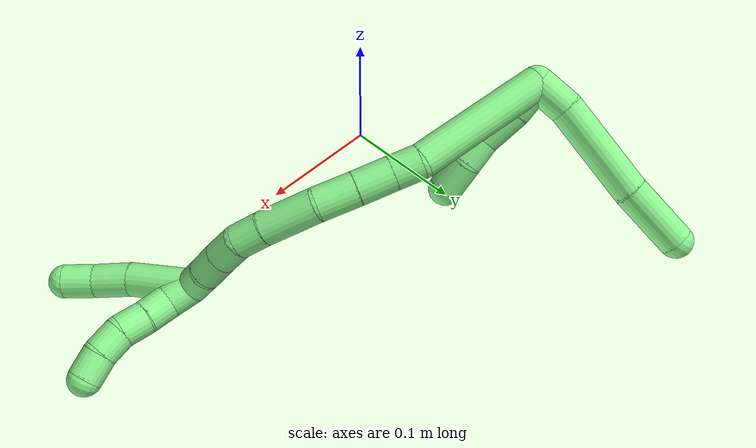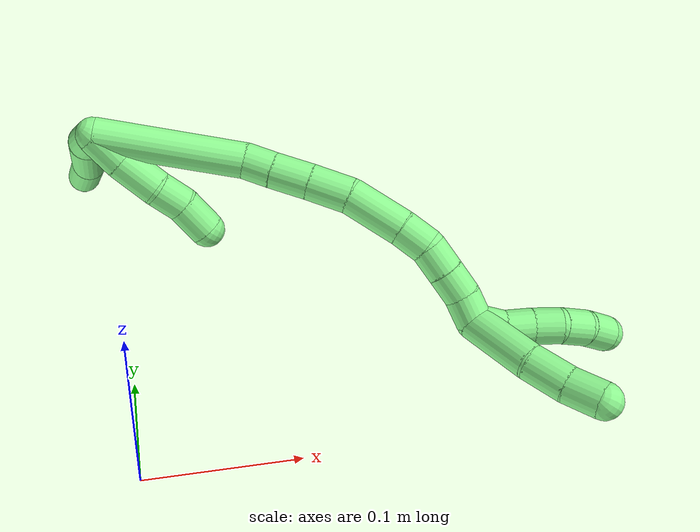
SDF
<sdf version="1.7">
 <world name="default">
  <model name="13">
   <static>0</static>
   <link name="13">
    <collision name="collision-cylinder-e_1_2_8">
     <pose>-0.010782 0.007575 0.002955 -1.19879 -0.924655 0.656368</pose>
     <geometry><cylinder><radius>0.0125</radius><length>0.027008</length></cylinder></geometry>
     <surface>
      <friction><ode><mu>1.16</mu><mu2>1.16</mu2><slip1>0</slip1><slip2>0</slip2></ode></friction>
      <contact><ode><kp>1e+06</kp><kd>1</kd><max_vel>0</max_vel><min_depth>0.001</min_depth></ode></contact>
     </surface>
    </collision>
    <visual name="visual-cylinder-e_1_2_8">
     <pose>-0.010782 0.007575 0.002955 -1.19879 -0.924655 0.656368</pose>
     <geometry><cylinder><radius>0.0125</radius><length>0.027008</length></cylinder></geometry>
     <material><ambient>0.564706 0.984314 0.572549 1</ambient></material>
    </visual>
    <collision name="collision-cylinder-e_2_8_9">
     <pose>-0.049878 0.03317 0.021325 -0.863191 -0.873612 0.423601</pose>
     <geometry><cylinder><radius>0.0125</radius><length>0.073866</length></cylinder></geometry>
     <surface>
      <friction><ode><mu>1.16</mu><mu2>1.16</mu2><slip1>0</slip1><slip2>0</slip2></ode></friction>
      <contact><ode><kp>1e+06</kp><kd>1</kd><max_vel>0</max_vel><min_depth>0.001</min_depth></ode></contact>
     </surface>
    </collision>
    <visual name="visual-cylinder-e_2_8_9">
     <pose>-0.049878 0.03317 0.021325 -0.863191 -0.873612 0.423601</pose>
     <geometry><cylinder><radius>0.0125</radius><length>0.073866</length></cylinder></geometry>
     <material><ambient>0.564706 0.984314 0.572549 1</ambient></material>
    </visual>
    <collision name="collision-cylinder-e_3_9_6">
     <pose>-0.096885 0.064766 0.045085 -1.0196 -0.864816 0.505071</pose>
     <geometry><cylinder><radius>0.0125</radius><length>0.049126</length></cylinder></geometry>
     <surface>
      <friction><ode><mu>1.16</mu><mu2>1.16</mu2><slip1>0</slip1><slip2>0</slip2></ode></friction>
      <contact><ode><kp>1e+06</kp><kd>1</kd><max_vel>0</max_vel><min_depth>0.001</min_depth></ode></contact>
     </surface>
    </collision>
    <visual name="visual-cylinder-e_3_9_6">
     <pose>-0.096885 0.064766 0.045085 -1.0196 -0.864816 0.505071</pose>
     <geometry><cylinder><radius>0.0125</radius><length>0.049126</length></cylinder></geometry>
     <material><ambient>0.564706 0.984314 0.572549 1</ambient></material>
    </visual>
    <collision name="collision-cylinder-e_1_2_10">
     <pose>0.003589 0.001729 0.011747 -0.146161 0.293557 -0.021646</pose>
     <geometry><cylinder><radius>0.0125</radius><length>0.024808</length></cylinder></geometry>
     <surface>
      <friction><ode><mu>1.16</mu><mu2>1.16</mu2><slip1>0</slip1><slip2>0</slip2></ode></friction>
      <contact><ode><kp>1e+06</kp><kd>1</kd><max_vel>0</max_vel><min_depth>0.001</min_depth></ode></contact>
     </surface>
    </collision>
    <visual name="visual-cylinder-e_1_2_10">
     <pose>0.003589 0.001729 0.011747 -0.146161 0.293557 -0.021646</pose>
     <geometry><cylinder><radius>0.0125</radius><length>0.024808</length></cylinder></geometry>
     <material><ambient>0.564706 0.984314 0.572549 1</ambient></material>
    </visual>
    <collision name="collision-cylinder-e_2_10_11">
     <pose>0.013079 0.003047 0.037152 0.030128 0.40762 0.006227</pose>
     <geometry><cylinder><radius>0.0125</radius><length>0.029769</length></cylinder></geometry>
     <surface>
      <friction><ode><mu>1.16</mu><mu2>1.16</mu2><slip1>0</slip1><slip2>0</slip2></ode></friction>
      <contact><ode><kp>1e+06</kp><kd>1</kd><max_vel>0</max_vel><min_depth>0.001</min_depth></ode></contact>
     </surface>
    </collision>
    <visual name="visual-cylinder-e_2_10_11">
     <pose>0.013079 0.003047 0.037152 0.030128 0.40762 0.006227</pose>
     <geometry><cylinder><radius>0.0125</radius><length>0.029769</length></cylinder></geometry>
     <material><ambient>0.564706 0.984314 0.572549 1</ambient></material>
    </visual>
    <collision name="collision-cylinder-e_3_11_12">
     <pose>0.020769 0.002352 0.061064 0.02763 0.1727 0.002392</pose>
     <geometry><cylinder><radius>0.0125</radius><length>0.020824</length></cylinder></geometry>
     <surface>
      <friction><ode><mu>1.16</mu><mu2>1.16</mu2><slip1>0</slip1><slip2>0</slip2></ode></friction>
      <contact><ode><kp>1e+06</kp><kd>1</kd><max_vel>0</max_vel><min_depth>0.001</min_depth></ode></contact>
     </surface>
    </collision>
    <visual name="visual-cylinder-e_3_11_12">
     <pose>0.020769 0.002352 0.061064 0.02763 0.1727 0.002392</pose>
     <geometry><cylinder><radius>0.0125</radius><length>0.020824</length></cylinder></geometry>
     <material><ambient>0.564706 0.984314 0.572549 1</ambient></material>
    </visual>
    <collision name="collision-cylinder-e_4_12_5">
     <pose>0.025849 0.004206 0.082974 -0.181317 0.270888 -0.024776</pose>
     <geometry><cylinder><radius>0.0125</radius><length>0.0246</length></cylinder></geometry>
     <surface>
      <friction><ode><mu>1.16</mu><mu2>1.16</mu2><slip1>0</slip1><slip2>0</slip2></ode></friction>
      <contact><ode><kp>1e+06</kp><kd>1</kd><max_vel>0</max_vel><min_depth>0.001</min_depth></ode></contact>
     </surface>
    </collision>
    <visual name="visual-cylinder-e_4_12_5">
     <pose>0.025849 0.004206 0.082974 -0.181317 0.270888 -0.024776</pose>
     <geometry><cylinder><radius>0.0125</radius><length>0.0246</length></cylinder></geometry>
     <material><ambient>0.564706 0.984314 0.572549 1</ambient></material>
    </visual>
    <collision name="collision-cylinder-e_1_2_13">
     <pose>0.012804 -0.024903 0.0425 0.530028 0.254302 0.069364</pose>
     <geometry><cylinder><radius>0.0125</radius><length>0.10179</length></cylinder></geometry>
     <surface>
      <friction><ode><mu>1.16</mu><mu2>1.16</mu2><slip1>0</slip1><slip2>0</slip2></ode></friction>
      <contact><ode><kp>1e+06</kp><kd>1</kd><max_vel>0</max_vel><min_depth>0.001</min_depth></ode></contact>
     </surface>
    </collision>
    <visual name="visual-cylinder-e_1_2_13">
     <pose>0.012804 -0.024903 0.0425 0.530028 0.254302 0.069364</pose>
     <geometry><cylinder><radius>0.0125</radius><length>0.10179</length></cylinder></geometry>
     <material><ambient>0.564706 0.984314 0.572549 1</ambient></material>
    </visual>
    <collision name="collision-cylinder-e_2_13_14">
     <pose>0.030908 -0.053865 0.092799 0.479887 0.542506 0.135872</pose>
     <geometry><cylinder><radius>0.0125</radius><length>0.020533</length></cylinder></geometry>
     <surface>
      <friction><ode><mu>1.16</mu><mu2>1.16</mu2><slip1>0</slip1><slip2>0</slip2></ode></friction>
      <contact><ode><kp>1e+06</kp><kd>1</kd><max_vel>0</max_vel><min_depth>0.001</min_depth></ode></contact>
     </surface>
    </collision>
    <visual name="visual-cylinder-e_2_13_14">
     <pose>0.030908 -0.053865 0.092799 0.479887 0.542506 0.135872</pose>
     <geometry><cylinder><radius>0.0125</radius><length>0.020533</length></cylinder></geometry>
     <material><ambient>0.564706 0.984314 0.572549 1</ambient></material>
    </visual>
    <collision name="collision-cylinder-e_3_14_15">
     <pose>0.042802 -0.063521 0.110743 0.504136 0.517416 0.136103</pose>
     <geometry><cylinder><radius>0.0125</radius><length>0.026663</length></cylinder></geometry>
     <surface>
      <friction><ode><mu>1.16</mu><mu2>1.16</mu2><slip1>0</slip1><slip2>0</slip2></ode></friction>
      <contact><ode><kp>1e+06</kp><kd>1</kd><max_vel>0</max_vel><min_depth>0.001</min_depth></ode></contact>
     </surface>
    </collision>
    <visual name="visual-cylinder-e_3_14_15">
     <pose>0.042802 -0.063521 0.110743 0.504136 0.517416 0.136103</pose>
     <geometry><cylinder><radius>0.0125</radius><length>0.026663</length></cylinder></geometry>
     <material><ambient>0.564706 0.984314 0.572549 1</ambient></material>
    </visual>
    <collision name="collision-cylinder-e_4_15_16">
     <pose>0.057013 -0.074901 0.131835 0.48596 0.551484 0.140044</pose>
     <geometry><cylinder><radius>0.0125</radius><length>0.029072</length></cylinder></geometry>
     <surface>
      <friction><ode><mu>1.16</mu><mu2>1.16</mu2><slip1>0</slip1><slip2>0</slip2></ode></friction>
      <contact><ode><kp>1e+06</kp><kd>1</kd><max_vel>0</max_vel><min_depth>0.001</min_depth></ode></contact>
     </surface>
    </collision>
    <visual name="visual-cylinder-e_4_15_16">
     <pose>0.057013 -0.074901 0.131835 0.48596 0.551484 0.140044</pose>
     <geometry><cylinder><radius>0.0125</radius><length>0.029072</length></cylinder></geometry>
     <material><ambient>0.564706 0.984314 0.572549 1</ambient></material>
    </visual>
    <collision name="collision-cylinder-e_5_16_17">
     <pose>0.076941 -0.084595 0.158544 0.243303 0.648713 0.082166</pose>
     <geometry><cylinder><radius>0.0125</radius><length>0.040758</length></cylinder></geometry>
     <surface>
      <friction><ode><mu>1.16</mu><mu2>1.16</mu2><slip1>0</slip1><slip2>0</slip2></ode></friction>
      <contact><ode><kp>1e+06</kp><kd>1</kd><max_vel>0</max_vel><min_depth>0.001</min_depth></ode></contact>
     </surface>
    </collision>
    <visual name="visual-cylinder-e_5_16_17">
     <pose>0.076941 -0.084595 0.158544 0.243303 0.648713 0.082166</pose>
     <geometry><cylinder><radius>0.0125</radius><length>0.040758</length></cylinder></geometry>
     <material><ambient>0.564706 0.984314 0.572549 1</ambient></material>
    </visual>
    <collision name="collision-cylinder-e_6_17_18">
     <pose>0.095493 -0.089634 0.182607 0.134867 0.640099 0.044761</pose>
     <geometry><cylinder><radius>0.0125</radius><length>0.020894</length></cylinder></geometry>
     <surface>
      <friction><ode><mu>1.16</mu><mu2>1.16</mu2><slip1>0</slip1><slip2>0</slip2></ode></friction>
      <contact><ode><kp>1e+06</kp><kd>1</kd><max_vel>0</max_vel><min_depth>0.001</min_depth></ode></contact>
     </surface>
    </collision>
    <visual name="visual-cylinder-e_6_17_18">
     <pose>0.095493 -0.089634 0.182607 0.134867 0.640099 0.044761</pose>
     <geometry><cylinder><radius>0.0125</radius><length>0.020894</length></cylinder></geometry>
     <material><ambient>0.564706 0.984314 0.572549 1</ambient></material>
    </visual>
    <collision name="collision-cylinder-e_7_18_19">
     <pose>0.106922 -0.088508 0.199242 -0.264042 0.541338 -0.073661</pose>
     <geometry><cylinder><radius>0.0125</radius><length>0.020143</length></cylinder></geometry>
     <surface>
      <friction><ode><mu>1.16</mu><mu2>1.16</mu2><slip1>0</slip1><slip2>0</slip2></ode></friction>
      <contact><ode><kp>1e+06</kp><kd>1</kd><max_vel>0</max_vel><min_depth>0.001</min_depth></ode></contact>
     </surface>
    </collision>
    <visual name="visual-cylinder-e_7_18_19">
     <pose>0.106922 -0.088508 0.199242 -0.264042 0.541338 -0.073661</pose>
     <geometry><cylinder><radius>0.0125</radius><length>0.020143</length></cylinder></geometry>
     <material><ambient>0.564706 0.984314 0.572549 1</ambient></material>
    </visual>
    <collision name="collision-cylinder-e_8_19_20">
     <pose>0.11693 -0.083889 0.216045 -0.272447 0.501172 -0.070143</pose>
     <geometry><cylinder><radius>0.0125</radius><length>0.020056</length></cylinder></geometry>
     <surface>
      <friction><ode><mu>1.16</mu><mu2>1.16</mu2><slip1>0</slip1><slip2>0</slip2></ode></friction>
      <contact><ode><kp>1e+06</kp><kd>1</kd><max_vel>0</max_vel><min_depth>0.001</min_depth></ode></contact>
     </surface>
    </collision>
    <visual name="visual-cylinder-e_8_19_20">
     <pose>0.11693 -0.083889 0.216045 -0.272447 0.501172 -0.070143</pose>
     <geometry><cylinder><radius>0.0125</radius><length>0.020056</length></cylinder></geometry>
     <material><ambient>0.564706 0.984314 0.572549 1</ambient></material>
    </visual>
    <collision name="collision-cylinder-e_9_20_1">
     <pose>0.127353 -0.077665 0.231906 -0.481059 0.591892 -0.149293</pose>
     <geometry><cylinder><radius>0.0125</radius><length>0.020091</length></cylinder></geometry>
     <surface>
      <friction><ode><mu>1.16</mu><mu2>1.16</mu2><slip1>0</slip1><slip2>0</slip2></ode></friction>
      <contact><ode><kp>1e+06</kp><kd>1</kd><max_vel>0</max_vel><min_depth>0.001</min_depth></ode></contact>
     </surface>
    </collision>
    <visual name="visual-cylinder-e_9_20_1">
     <pose>0.127353 -0.077665 0.231906 -0.481059 0.591892 -0.149293</pose>
     <geometry><cylinder><radius>0.0125</radius><length>0.020091</length></cylinder></geometry>
     <material><ambient>0.564706 0.984314 0.572549 1</ambient></material>
    </visual>
    <collision name="collision-cylinder-e_1_1_21">
     <pose>0.154506 -0.079282 0.248479 0.537699 1.11026 0.338477</pose>
     <geometry><cylinder><radius>0.0125</radius><length>0.048111</length></cylinder></geometry>
     <surface>
      <friction><ode><mu>1.16</mu><mu2>1.16</mu2><slip1>0</slip1><slip2>0</slip2></ode></friction>
      <contact><ode><kp>1e+06</kp><kd>1</kd><max_vel>0</max_vel><min_depth>0.001</min_depth></ode></contact>
     </surface>
    </collision>
    <visual name="visual-cylinder-e_1_1_21">
     <pose>0.154506 -0.079282 0.248479 0.537699 1.11026 0.338477</pose>
     <geometry><cylinder><radius>0.0125</radius><length>0.048111</length></cylinder></geometry>
     <material><ambient>0.564706 0.984314 0.572549 1</ambient></material>
    </visual>
    <collision name="collision-cylinder-e_2_21_22">
     <pose>0.187519 -0.088765 0.2648 0.511479 0.950665 0.267541</pose>
     <geometry><cylinder><radius>0.0125</radius><length>0.028172</length></cylinder></geometry>
     <surface>
      <friction><ode><mu>1.16</mu><mu2>1.16</mu2><slip1>0</slip1><slip2>0</slip2></ode></friction>
      <contact><ode><kp>1e+06</kp><kd>1</kd><max_vel>0</max_vel><min_depth>0.001</min_depth></ode></contact>
     </surface>
    </collision>
    <visual name="visual-cylinder-e_2_21_22">
     <pose>0.187519 -0.088765 0.2648 0.511479 0.950665 0.267541</pose>
     <geometry><cylinder><radius>0.0125</radius><length>0.028172</length></cylinder></geometry>
     <material><ambient>0.564706 0.984314 0.572549 1</ambient></material>
    </visual>
    <collision name="collision-cylinder-e_3_22_4">
     <pose>0.208235 -0.097597 0.27757 0.708419 0.895093 0.351377</pose>
     <geometry><cylinder><radius>0.0125</radius><length>0.023718</length></cylinder></geometry>
     <surface>
      <friction><ode><mu>1.16</mu><mu2>1.16</mu2><slip1>0</slip1><slip2>0</slip2></ode></friction>
      <contact><ode><kp>1e+06</kp><kd>1</kd><max_vel>0</max_vel><min_depth>0.001</min_depth></ode></contact>
     </surface>
    </collision>
    <visual name="visual-cylinder-e_3_22_4">
     <pose>0.208235 -0.097597 0.27757 0.708419 0.895093 0.351377</pose>
     <geometry><cylinder><radius>0.0125</radius><length>0.023718</length></cylinder></geometry>
     <material><ambient>0.564706 0.984314 0.572549 1</ambient></material>
    </visual>
    <collision name="collision-cylinder-e_1_1_23">
     <pose>0.136006 -0.078143 0.247777 0.472619 0.309774 0.075163</pose>
     <geometry><cylinder><radius>0.0125</radius><length>0.02</length></cylinder></geometry>
     <surface>
      <friction><ode><mu>1.16</mu><mu2>1.16</mu2><slip1>0</slip1><slip2>0</slip2></ode></friction>
      <contact><ode><kp>1e+06</kp><kd>1</kd><max_vel>0</max_vel><min_depth>0.001</min_depth></ode></contact>
     </surface>
    </collision>
    <visual name="visual-cylinder-e_1_1_23">
     <pose>0.136006 -0.078143 0.247777 0.472619 0.309774 0.075163</pose>
     <geometry><cylinder><radius>0.0125</radius><length>0.02</length></cylinder></geometry>
     <material><ambient>0.564706 0.984314 0.572549 1</ambient></material>
    </visual>
    <collision name="collision-cylinder-e_2_23_24">
     <pose>0.140034 -0.088883 0.263873 0.699236 0.098099 0.035791</pose>
     <geometry><cylinder><radius>0.0125</radius><length>0.02</length></cylinder></geometry>
     <surface>
      <friction><ode><mu>1.16</mu><mu2>1.16</mu2><slip1>0</slip1><slip2>0</slip2></ode></friction>
      <contact><ode><kp>1e+06</kp><kd>1</kd><max_vel>0</max_vel><min_depth>0.001</min_depth></ode></contact>
     </surface>
    </collision>
    <visual name="visual-cylinder-e_2_23_24">
     <pose>0.140034 -0.088883 0.263873 0.699236 0.098099 0.035791</pose>
     <geometry><cylinder><radius>0.0125</radius><length>0.02</length></cylinder></geometry>
     <material><ambient>0.564706 0.984314 0.572549 1</ambient></material>
    </visual>
    <collision name="collision-cylinder-e_3_24_25">
     <pose>0.143041 -0.101577 0.278996 0.697326 0.204202 0.074455</pose>
     <geometry><cylinder><radius>0.0125</radius><length>0.02</length></cylinder></geometry>
     <surface>
      <friction><ode><mu>1.16</mu><mu2>1.16</mu2><slip1>0</slip1><slip2>0</slip2></ode></friction>
      <contact><ode><kp>1e+06</kp><kd>1</kd><max_vel>0</max_vel><min_depth>0.001</min_depth></ode></contact>
     </surface>
    </collision>
    <visual name="visual-cylinder-e_3_24_25">
     <pose>0.143041 -0.101577 0.278996 0.697326 0.204202 0.074455</pose>
     <geometry><cylinder><radius>0.0125</radius><length>0.02</length></cylinder></geometry>
     <material><ambient>0.564706 0.984314 0.572549 1</ambient></material>
    </visual>
    <collision name="collision-cylinder-e_4_25_26">
     <pose>0.145282 -0.112157 0.295532 0.443637 0.021284 0.0048</pose>
     <geometry><cylinder><radius>0.0125</radius><length>0.02</length></cylinder></geometry>
     <surface>
      <friction><ode><mu>1.16</mu><mu2>1.16</mu2><slip1>0</slip1><slip2>0</slip2></ode></friction>
      <contact><ode><kp>1e+06</kp><kd>1</kd><max_vel>0</max_vel><min_depth>0.001</min_depth></ode></contact>
     </surface>
    </collision>
    <visual name="visual-cylinder-e_4_25_26">
     <pose>0.145282 -0.112157 0.295532 0.443637 0.021284 0.0048</pose>
     <geometry><cylinder><radius>0.0125</radius><length>0.02</length></cylinder></geometry>
     <material><ambient>0.564706 0.984314 0.572549 1</ambient></material>
    </visual>
    <collision name="collision-cylinder-e_5_26_3">
     <pose>0.144719 -0.11866 0.314284 0.223718 -0.077582 -0.008719</pose>
     <geometry><cylinder><radius>0.0125</radius><length>0.02</length></cylinder></geometry>
     <surface>
      <friction><ode><mu>1.16</mu><mu2>1.16</mu2><slip1>0</slip1><slip2>0</slip2></ode></friction>
      <contact><ode><kp>1e+06</kp><kd>1</kd><max_vel>0</max_vel><min_depth>0.001</min_depth></ode></contact>
     </surface>
    </collision>
    <visual name="visual-cylinder-e_5_26_3">
     <pose>0.144719 -0.11866 0.314284 0.223718 -0.077582 -0.008719</pose>
     <geometry><cylinder><radius>0.0125</radius><length>0.02</length></cylinder></geometry>
     <material><ambient>0.564706 0.984314 0.572549 1</ambient></material>
    </visual>
    <collision name="collision-sphere-3">
     <pose>0.143944 -0.120872 0.324005 0 -0 0</pose>
     <geometry><sphere><radius>0.0125</radius></sphere></geometry>
     <surface>
      <friction><ode><mu>1.16</mu><mu2>1.16</mu2><slip1>0</slip1><slip2>0</slip2></ode></friction>
      <contact><ode><kp>1e+06</kp><kd>1</kd><max_vel>0</max_vel><min_depth>0.001</min_depth></ode></contact>
     </surface>
    </collision>
    <visual name="visual-sphere-3">
     <pose>0.143944 -0.120872 0.324005 0 -0 0</pose>
     <geometry><sphere><radius>0.0125</radius></sphere></geometry>
     <material><ambient>0.564706 0.984314 0.572549 1</ambient></material>
    </visual>
    <collision name="collision-sphere-26">
     <pose>0.145494 -0.116448 0.304562 0 -0 0</pose>
     <geometry><sphere><radius>0.0125</radius></sphere></geometry>
     <surface>
      <friction><ode><mu>1.16</mu><mu2>1.16</mu2><slip1>0</slip1><slip2>0</slip2></ode></friction>
      <contact><ode><kp>1e+06</kp><kd>1</kd><max_vel>0</max_vel><min_depth>0.001</min_depth></ode></contact>
     </surface>
    </collision>
    <visual name="visual-sphere-26">
     <pose>0.145494 -0.116448 0.304562 0 -0 0</pose>
     <geometry><sphere><radius>0.0125</radius></sphere></geometry>
     <material><ambient>0.564706 0.984314 0.572549 1</ambient></material>
    </visual>
    <collision name="collision-sphere-25">
     <pose>0.145069 -0.107865 0.286503 0 -0 0</pose>
     <geometry><sphere><radius>0.0125</radius></sphere></geometry>
     <surface>
      <friction><ode><mu>1.16</mu><mu2>1.16</mu2><slip1>0</slip1><slip2>0</slip2></ode></friction>
      <contact><ode><kp>1e+06</kp><kd>1</kd><max_vel>0</max_vel><min_depth>0.001</min_depth></ode></contact>
     </surface>
    </collision>
    <visual name="visual-sphere-25">
     <pose>0.145069 -0.107865 0.286503 0 -0 0</pose>
     <geometry><sphere><radius>0.0125</radius></sphere></geometry>
     <material><ambient>0.564706 0.984314 0.572549 1</ambient></material>
    </visual>
    <collision name="collision-sphere-24">
     <pose>0.141013 -0.095289 0.27149 0 -0 0</pose>
     <geometry><sphere><radius>0.0125</radius></sphere></geometry>
     <surface>
      <friction><ode><mu>1.16</mu><mu2>1.16</mu2><slip1>0</slip1><slip2>0</slip2></ode></friction>
      <contact><ode><kp>1e+06</kp><kd>1</kd><max_vel>0</max_vel><min_depth>0.001</min_depth></ode></contact>
     </surface>
    </collision>
    <visual name="visual-sphere-24">
     <pose>0.141013 -0.095289 0.27149 0 -0 0</pose>
     <geometry><sphere><radius>0.0125</radius></sphere></geometry>
     <material><ambient>0.564706 0.984314 0.572549 1</ambient></material>
    </visual>
    <collision name="collision-sphere-23">
     <pose>0.139054 -0.082478 0.256257 0 -0 0</pose>
     <geometry><sphere><radius>0.0125</radius></sphere></geometry>
     <surface>
      <friction><ode><mu>1.16</mu><mu2>1.16</mu2><slip1>0</slip1><slip2>0</slip2></ode></friction>
      <contact><ode><kp>1e+06</kp><kd>1</kd><max_vel>0</max_vel><min_depth>0.001</min_depth></ode></contact>
     </surface>
    </collision>
    <visual name="visual-sphere-23">
     <pose>0.139054 -0.082478 0.256257 0 -0 0</pose>
     <geometry><sphere><radius>0.0125</radius></sphere></geometry>
     <material><ambient>0.564706 0.984314 0.572549 1</ambient></material>
    </visual>
    <collision name="collision-sphere-4">
     <pose>0.217488 -0.102423 0.283203 0 -0 0</pose>
     <geometry><sphere><radius>0.0125</radius></sphere></geometry>
     <surface>
      <friction><ode><mu>1.16</mu><mu2>1.16</mu2><slip1>0</slip1><slip2>0</slip2></ode></friction>
      <contact><ode><kp>1e+06</kp><kd>1</kd><max_vel>0</max_vel><min_depth>0.001</min_depth></ode></contact>
     </surface>
    </collision>
    <visual name="visual-sphere-4">
     <pose>0.217488 -0.102423 0.283203 0 -0 0</pose>
     <geometry><sphere><radius>0.0125</radius></sphere></geometry>
     <material><ambient>0.564706 0.984314 0.572549 1</ambient></material>
    </visual>
    <collision name="collision-sphere-22">
     <pose>0.198982 -0.092771 0.271938 0 -0 0</pose>
     <geometry><sphere><radius>0.0125</radius></sphere></geometry>
     <surface>
      <friction><ode><mu>1.16</mu><mu2>1.16</mu2><slip1>0</slip1><slip2>0</slip2></ode></friction>
      <contact><ode><kp>1e+06</kp><kd>1</kd><max_vel>0</max_vel><min_depth>0.001</min_depth></ode></contact>
     </surface>
    </collision>
    <visual name="visual-sphere-22">
     <pose>0.198982 -0.092771 0.271938 0 -0 0</pose>
     <geometry><sphere><radius>0.0125</radius></sphere></geometry>
     <material><ambient>0.564706 0.984314 0.572549 1</ambient></material>
    </visual>
    <collision name="collision-sphere-21">
     <pose>0.176056 -0.084758 0.257661 0 -0 0</pose>
     <geometry><sphere><radius>0.0125</radius></sphere></geometry>
     <surface>
      <friction><ode><mu>1.16</mu><mu2>1.16</mu2><slip1>0</slip1><slip2>0</slip2></ode></friction>
      <contact><ode><kp>1e+06</kp><kd>1</kd><max_vel>0</max_vel><min_depth>0.001</min_depth></ode></contact>
     </surface>
    </collision>
    <visual name="visual-sphere-21">
     <pose>0.176056 -0.084758 0.257661 0 -0 0</pose>
     <geometry><sphere><radius>0.0125</radius></sphere></geometry>
     <material><ambient>0.564706 0.984314 0.572549 1</ambient></material>
    </visual>
    <collision name="collision-sphere-1">
     <pose>0.132957 -0.073807 0.239297 0 -0 0</pose>
     <geometry><sphere><radius>0.0125</radius></sphere></geometry>
     <surface>
      <friction><ode><mu>1.16</mu><mu2>1.16</mu2><slip1>0</slip1><slip2>0</slip2></ode></friction>
      <contact><ode><kp>1e+06</kp><kd>1</kd><max_vel>0</max_vel><min_depth>0.001</min_depth></ode></contact>
     </surface>
    </collision>
    <visual name="visual-sphere-1">
     <pose>0.132957 -0.073807 0.239297 0 -0 0</pose>
     <geometry><sphere><radius>0.0125</radius></sphere></geometry>
     <material><ambient>0.564706 0.984314 0.572549 1</ambient></material>
    </visual>
    <collision name="collision-sphere-11">
     <pose>0.018979 0.002635 0.050811 0 -0 0</pose>
     <geometry><sphere><radius>0.0125</radius></sphere></geometry>
     <surface>
      <friction><ode><mu>1.16</mu><mu2>1.16</mu2><slip1>0</slip1><slip2>0</slip2></ode></friction>
      <contact><ode><kp>1e+06</kp><kd>1</kd><max_vel>0</max_vel><min_depth>0.001</min_depth></ode></contact>
     </surface>
    </collision>
    <visual name="visual-sphere-11">
     <pose>0.018979 0.002635 0.050811 0 -0 0</pose>
     <geometry><sphere><radius>0.0125</radius></sphere></geometry>
     <material><ambient>0.564706 0.984314 0.572549 1</ambient></material>
    </visual>
    <collision name="collision-sphere-10">
     <pose>0.007178 0.003458 0.023493 0 -0 0</pose>
     <geometry><sphere><radius>0.0125</radius></sphere></geometry>
     <surface>
      <friction><ode><mu>1.16</mu><mu2>1.16</mu2><slip1>0</slip1><slip2>0</slip2></ode></friction>
      <contact><ode><kp>1e+06</kp><kd>1</kd><max_vel>0</max_vel><min_depth>0.001</min_depth></ode></contact>
     </surface>
    </collision>
    <visual name="visual-sphere-10">
     <pose>0.007178 0.003458 0.023493 0 -0 0</pose>
     <geometry><sphere><radius>0.0125</radius></sphere></geometry>
     <material><ambient>0.564706 0.984314 0.572549 1</ambient></material>
    </visual>
    <collision name="collision-sphere-6">
     <pose>-0.115577 0.078342 0.05343 0 -0 0</pose>
     <geometry><sphere><radius>0.0125</radius></sphere></geometry>
     <surface>
      <friction><ode><mu>1.16</mu><mu2>1.16</mu2><slip1>0</slip1><slip2>0</slip2></ode></friction>
      <contact><ode><kp>1e+06</kp><kd>1</kd><max_vel>0</max_vel><min_depth>0.001</min_depth></ode></contact>
     </surface>
    </collision>
    <visual name="visual-sphere-6">
     <pose>-0.115577 0.078342 0.05343 0 -0 0</pose>
     <geometry><sphere><radius>0.0125</radius></sphere></geometry>
     <material><ambient>0.564706 0.984314 0.572549 1</ambient></material>
    </visual>
    <collision name="collision-sphere-9">
     <pose>-0.078193 0.05119 0.036739 0 -0 0</pose>
     <geometry><sphere><radius>0.0125</radius></sphere></geometry>
     <surface>
      <friction><ode><mu>1.16</mu><mu2>1.16</mu2><slip1>0</slip1><slip2>0</slip2></ode></friction>
      <contact><ode><kp>1e+06</kp><kd>1</kd><max_vel>0</max_vel><min_depth>0.001</min_depth></ode></contact>
     </surface>
    </collision>
    <visual name="visual-sphere-9">
     <pose>-0.078193 0.05119 0.036739 0 -0 0</pose>
     <geometry><sphere><radius>0.0125</radius></sphere></geometry>
     <material><ambient>0.564706 0.984314 0.572549 1</ambient></material>
    </visual>
    <collision name="collision-sphere-2">
     <geometry><sphere><radius>0.0125</radius></sphere></geometry>
     <surface>
      <friction><ode><mu>1.16</mu><mu2>1.16</mu2><slip1>0</slip1><slip2>0</slip2></ode></friction>
      <contact><ode><kp>1e+06</kp><kd>1</kd><max_vel>0</max_vel><min_depth>0.001</min_depth></ode></contact>
     </surface>
    </collision>
    <visual name="visual-sphere-2">
     <geometry><sphere><radius>0.0125</radius></sphere></geometry>
     <material><ambient>0.564706 0.984314 0.572549 1</ambient></material>
    </visual>
    <collision name="collision-sphere-19">
     <pose>0.112112 -0.086255 0.207575 0 -0 0</pose>
     <geometry><sphere><radius>0.0125</radius></sphere></geometry>
     <surface>
      <friction><ode><mu>1.16</mu><mu2>1.16</mu2><slip1>0</slip1><slip2>0</slip2></ode></friction>
      <contact><ode><kp>1e+06</kp><kd>1</kd><max_vel>0</max_vel><min_depth>0.001</min_depth></ode></contact>
     </surface>
    </collision>
    <visual name="visual-sphere-19">
     <pose>0.112112 -0.086255 0.207575 0 -0 0</pose>
     <geometry><sphere><radius>0.0125</radius></sphere></geometry>
     <material><ambient>0.564706 0.984314 0.572549 1</ambient></material>
    </visual>
    <collision name="collision-sphere-8">
     <pose>-0.021563 0.015149 0.005911 0 -0 0</pose>
     <geometry><sphere><radius>0.0125</radius></sphere></geometry>
     <surface>
      <friction><ode><mu>1.16</mu><mu2>1.16</mu2><slip1>0</slip1><slip2>0</slip2></ode></friction>
      <contact><ode><kp>1e+06</kp><kd>1</kd><max_vel>0</max_vel><min_depth>0.001</min_depth></ode></contact>
     </surface>
    </collision>
    <visual name="visual-sphere-8">
     <pose>-0.021563 0.015149 0.005911 0 -0 0</pose>
     <geometry><sphere><radius>0.0125</radius></sphere></geometry>
     <material><ambient>0.564706 0.984314 0.572549 1</ambient></material>
    </visual>
    <collision name="collision-sphere-12">
     <pose>0.022558 0.002068 0.071317 0 -0 0</pose>
     <geometry><sphere><radius>0.0125</radius></sphere></geometry>
     <surface>
      <friction><ode><mu>1.16</mu><mu2>1.16</mu2><slip1>0</slip1><slip2>0</slip2></ode></friction>
      <contact><ode><kp>1e+06</kp><kd>1</kd><max_vel>0</max_vel><min_depth>0.001</min_depth></ode></contact>
     </surface>
    </collision>
    <visual name="visual-sphere-12">
     <pose>0.022558 0.002068 0.071317 0 -0 0</pose>
     <geometry><sphere><radius>0.0125</radius></sphere></geometry>
     <material><ambient>0.564706 0.984314 0.572549 1</ambient></material>
    </visual>
    <collision name="collision-sphere-5">
     <pose>0.02914 0.006343 0.094631 0 -0 0</pose>
     <geometry><sphere><radius>0.0125</radius></sphere></geometry>
     <surface>
      <friction><ode><mu>1.16</mu><mu2>1.16</mu2><slip1>0</slip1><slip2>0</slip2></ode></friction>
      <contact><ode><kp>1e+06</kp><kd>1</kd><max_vel>0</max_vel><min_depth>0.001</min_depth></ode></contact>
     </surface>
    </collision>
    <visual name="visual-sphere-5">
     <pose>0.02914 0.006343 0.094631 0 -0 0</pose>
     <geometry><sphere><radius>0.0125</radius></sphere></geometry>
     <material><ambient>0.564706 0.984314 0.572549 1</ambient></material>
    </visual>
    <collision name="collision-sphere-13">
     <pose>0.025607 -0.049806 0.085 0 -0 0</pose>
     <geometry><sphere><radius>0.0125</radius></sphere></geometry>
     <surface>
      <friction><ode><mu>1.16</mu><mu2>1.16</mu2><slip1>0</slip1><slip2>0</slip2></ode></friction>
      <contact><ode><kp>1e+06</kp><kd>1</kd><max_vel>0</max_vel><min_depth>0.001</min_depth></ode></contact>
     </surface>
    </collision>
    <visual name="visual-sphere-13">
     <pose>0.025607 -0.049806 0.085 0 -0 0</pose>
     <geometry><sphere><radius>0.0125</radius></sphere></geometry>
     <material><ambient>0.564706 0.984314 0.572549 1</ambient></material>
    </visual>
    <collision name="collision-sphere-14">
     <pose>0.036208 -0.057924 0.100598 0 -0 0</pose>
     <geometry><sphere><radius>0.0125</radius></sphere></geometry>
     <surface>
      <friction><ode><mu>1.16</mu><mu2>1.16</mu2><slip1>0</slip1><slip2>0</slip2></ode></friction>
      <contact><ode><kp>1e+06</kp><kd>1</kd><max_vel>0</max_vel><min_depth>0.001</min_depth></ode></contact>
     </surface>
    </collision>
    <visual name="visual-sphere-14">
     <pose>0.036208 -0.057924 0.100598 0 -0 0</pose>
     <geometry><sphere><radius>0.0125</radius></sphere></geometry>
     <material><ambient>0.564706 0.984314 0.572549 1</ambient></material>
    </visual>
    <collision name="collision-sphere-15">
     <pose>0.049396 -0.069118 0.120888 0 -0 0</pose>
     <geometry><sphere><radius>0.0125</radius></sphere></geometry>
     <surface>
      <friction><ode><mu>1.16</mu><mu2>1.16</mu2><slip1>0</slip1><slip2>0</slip2></ode></friction>
      <contact><ode><kp>1e+06</kp><kd>1</kd><max_vel>0</max_vel><min_depth>0.001</min_depth></ode></contact>
     </surface>
    </collision>
    <visual name="visual-sphere-15">
     <pose>0.049396 -0.069118 0.120888 0 -0 0</pose>
     <geometry><sphere><radius>0.0125</radius></sphere></geometry>
     <material><ambient>0.564706 0.984314 0.572549 1</ambient></material>
    </visual>
    <collision name="collision-sphere-16">
     <pose>0.064629 -0.080683 0.142783 0 -0 0</pose>
     <geometry><sphere><radius>0.0125</radius></sphere></geometry>
     <surface>
      <friction><ode><mu>1.16</mu><mu2>1.16</mu2><slip1>0</slip1><slip2>0</slip2></ode></friction>
      <contact><ode><kp>1e+06</kp><kd>1</kd><max_vel>0</max_vel><min_depth>0.001</min_depth></ode></contact>
     </surface>
    </collision>
    <visual name="visual-sphere-16">
     <pose>0.064629 -0.080683 0.142783 0 -0 0</pose>
     <geometry><sphere><radius>0.0125</radius></sphere></geometry>
     <material><ambient>0.564706 0.984314 0.572549 1</ambient></material>
    </visual>
    <collision name="collision-sphere-17">
     <pose>0.089253 -0.088508 0.174305 0 -0 0</pose>
     <geometry><sphere><radius>0.0125</radius></sphere></geometry>
     <surface>
      <friction><ode><mu>1.16</mu><mu2>1.16</mu2><slip1>0</slip1><slip2>0</slip2></ode></friction>
      <contact><ode><kp>1e+06</kp><kd>1</kd><max_vel>0</max_vel><min_depth>0.001</min_depth></ode></contact>
     </surface>
    </collision>
    <visual name="visual-sphere-17">
     <pose>0.089253 -0.088508 0.174305 0 -0 0</pose>
     <geometry><sphere><radius>0.0125</radius></sphere></geometry>
     <material><ambient>0.564706 0.984314 0.572549 1</ambient></material>
    </visual>
    <collision name="collision-sphere-18">
     <pose>0.101732 -0.090761 0.19091 0 -0 0</pose>
     <geometry><sphere><radius>0.0125</radius></sphere></geometry>
     <surface>
      <friction><ode><mu>1.16</mu><mu2>1.16</mu2><slip1>0</slip1><slip2>0</slip2></ode></friction>
      <contact><ode><kp>1e+06</kp><kd>1</kd><max_vel>0</max_vel><min_depth>0.001</min_depth></ode></contact>
     </surface>
    </collision>
    <visual name="visual-sphere-18">
     <pose>0.101732 -0.090761 0.19091 0 -0 0</pose>
     <geometry><sphere><radius>0.0125</radius></sphere></geometry>
     <material><ambient>0.564706 0.984314 0.572549 1</ambient></material>
    </visual>
    <collision name="collision-sphere-20">
     <pose>0.121748 -0.081522 0.224516 0 -0 0</pose>
     <geometry><sphere><radius>0.0125</radius></sphere></geometry>
     <surface>
      <friction><ode><mu>1.16</mu><mu2>1.16</mu2><slip1>0</slip1><slip2>0</slip2></ode></friction>
      <contact><ode><kp>1e+06</kp><kd>1</kd><max_vel>0</max_vel><min_depth>0.001</min_depth></ode></contact>
     </surface>
    </collision>
    <visual name="visual-sphere-20">
     <pose>0.121748 -0.081522 0.224516 0 -0 0</pose>
     <geometry><sphere><radius>0.0125</radius></sphere></geometry>
     <material><ambient>0.564706 0.984314 0.572549 1</ambient></material>
    </visual>
    <inertial>
     <pose>0.055431 -0.040472 0.131849 0 -0 0</pose>
     <mass>0.75</mass>
     <inertia>
      <ixx>0.000194</ixx>
      <ixy>0</ixy>
      <ixz>0</ixz>
      <iyy>0.000191</iyy>
      <iyz>0</iyz>
      <izz>5.7e-05</izz>
     </inertia>
    </inertial>
   </link>
   <pose>-0.009608 0.164169 0.159736 -2.26899 0.109848 -1.51048</pose>
  </model>
 </world>
</sdf>
